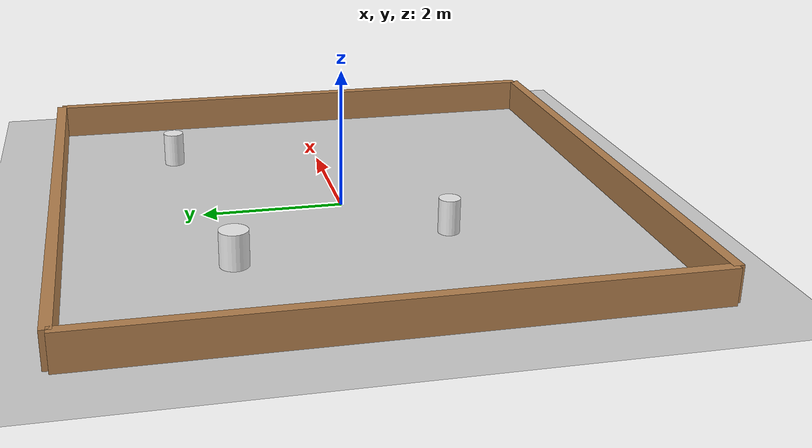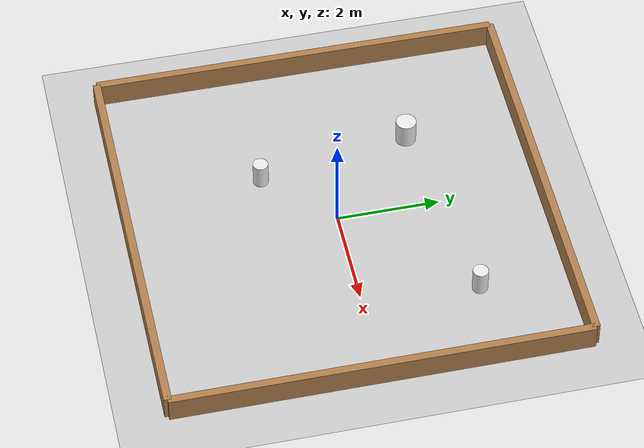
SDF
<sdf version="1.7">
 <world name="default">
  <light name="sun" type="directional">
   <pose>0 0 10 0 -0 0</pose>
   <diffuse>0.8 0.8 0.8 1</diffuse>
   <specular>0.2 0.2 0.2 1</specular>
   <attenuation>
    <range>1000</range>
    <constant>0.9</constant>
    <linear>0.01</linear>
    <quadratic>0.001</quadratic>
   </attenuation>
   <direction>-0.5 0.1 -0.9</direction>
   <spot><inner_angle>0</inner_angle><outer_angle>0</outer_angle><falloff>0</falloff></spot>
  </light>
  <model name="ground_plane">
   <static>1</static>
   <link name="link">
    <collision name="collision">
     <geometry><plane><normal>0 0 1</normal><size>100 100</size></plane></geometry>
     <surface>
      <contact><collide_bitmask>65535</collide_bitmask></contact>
      <friction><ode><mu>100</mu><mu2>50</mu2></ode></friction>
     </surface>
    </collision>
    <visual name="visual">
     <cast_shadows>0</cast_shadows>
     <geometry><plane><normal>0 0 1</normal><size>100 100</size></plane></geometry>
     <material>
      <script><uri>file://media/materials/scripts/gazebo.material</uri><name>Gazebo/Grey</name></script>
     </material>
    </visual>
   </link>
  </model>
  <physics type="ode">
   <max_step_size>0.01</max_step_size>
   <real_time_factor>1</real_time_factor>
   <real_time_update_rate>100</real_time_update_rate>
   <ode>
    <solver>
     <type>quick</type>
     <iters>150</iters>
     <precon_iters>0</precon_iters>
     <sor>1.4</sor>
     <use_dynamic_moi_rescaling>1</use_dynamic_moi_rescaling>
    </solver>
    <constraints>
     <cfm>1e-05</cfm>
     <erp>0.2</erp>
     <contact_max_correcting_vel>2000</contact_max_correcting_vel>
     <contact_surface_layer>0.01</contact_surface_layer>
    </constraints>
   </ode>
  </physics>
  <model name="obstacle">
   <pose>0 -0 -0.00088 1e-06 1e-06 0</pose>
   <link name="obstacle">
    <collision name="obstacle_1">
     <pose>-1.25 -1.25 0.25 0 -0 0</pose>
     <geometry><cylinder><radius>0.2</radius><length>0.5</length></cylinder></geometry>
    </collision>
    <visual name="obstacle_1">
     <pose>-1.25 -1.25 0.25 0 -0 0</pose>
     <geometry><cylinder><radius>0.15</radius><length>0.5</length></cylinder></geometry>
     <material>
      <script><uri>file://media/materials/scripts/gazebo.material</uri><name>Gazebo/White</name></script>
     </material>
    </visual>
    <collision name="obstacle_2">
     <pose>-1.75 1.75 0.25 0 -0 0</pose>
     <geometry><cylinder><radius>0.2</radius><length>0.5</length></cylinder></geometry>
    </collision>
    <visual name="obstacle_2">
     <pose>-1.75 1.75 0.25 0 -0 0</pose>
     <geometry><cylinder><radius>0.2</radius><length>0.5</length></cylinder></geometry>
     <material>
      <script><uri>file://media/materials/scripts/gazebo.material</uri><name>Gazebo/White</name></script>
     </material>
    </visual>
    <collision name="obstacle_3">
     <pose>2.25 2.25 0.25 0 -0 0</pose>
     <geometry><cylinder><radius>0.15</radius><length>0.5</length></cylinder></geometry>
    </collision>
    <visual name="obstacle_3">
     <pose>2.25 2.25 0.25 0 -0 0</pose>
     <geometry><cylinder><radius>0.15</radius><length>0.5</length></cylinder></geometry>
     <material>
      <script><uri>file://media/materials/scripts/gazebo.material</uri><name>Gazebo/White</name></script>
     </material>
    </visual>
    <inertial>
     <inertia><ixx>1</ixx><ixy>0</ixy><ixz>0</ixz><iyy>1</iyy><iyz>0</iyz><izz>1</izz></inertia>
     <mass>1</mass>
    </inertial>
   </link>
  </model>
  <scene><ambient>0.4 0.4 0.4 1</ambient><background>0.7 0.7 0.7 1</background><shadows>1</shadows></scene>
  <gravity>0 0 -9.8</gravity>
  <magnetic_field>6e-06 2.3e-05 -4.2e-05</magnetic_field>
  <atmosphere type="adiabatic"/>
  <spherical_coordinates>
   <surface_model>EARTH_WGS84</surface_model>
   <latitude_deg>0</latitude_deg>
   <longitude_deg>0</longitude_deg>
   <elevation>0</elevation>
   <heading_deg>0</heading_deg>
  </spherical_coordinates>
  <model name="turtlebot3_square_0">
   <link name="Wall_0">
    <collision name="Wall_0_Collision">
     <geometry><box><size>8 0.15 0.5</size></box></geometry>
     <pose>0 0 0.25 0 -0 0</pose>
    </collision>
    <visual name="Wall_0_Visual">
     <pose>0 0 0.25 0 -0 0</pose>
     <geometry><box><size>8 0.15 0.5</size></box></geometry>
     <material>
      <script><uri>file://media/materials/scripts/gazebo.material</uri><name>Gazebo/Wood</name></script>
      <ambient>1 1 1 1</ambient>
     </material>
    </visual>
    <pose>0 4 0 0 -0 0</pose>
   </link>
   <link name="Wall_2">
    <collision name="Wall_2_Collision">
     <geometry><box><size>8 0.15 0.5</size></box></geometry>
     <pose>0 0 0.25 0 -0 0</pose>
    </collision>
    <visual name="Wall_2_Visual">
     <pose>0 0 0.25 0 -0 0</pose>
     <geometry><box><size>8 0.15 0.5</size></box></geometry>
     <material>
      <script><uri>file://media/materials/scripts/gazebo.material</uri><name>Gazebo/Wood</name></script>
      <ambient>1 1 1 1</ambient>
     </material>
    </visual>
    <pose>-4 0 0 0 0 -1.5708</pose>
   </link>
   <link name="Wall_3">
    <collision name="Wall_3_Collision">
     <geometry><box><size>8 0.15 0.5</size></box></geometry>
     <pose>0 0 0.25 0 -0 0</pose>
    </collision>
    <visual name="Wall_3_Visual">
     <pose>0 0 0.25 0 -0 0</pose>
     <geometry><box><size>8 0.15 0.5</size></box></geometry>
     <material>
      <script><uri>file://media/materials/scripts/gazebo.material</uri><name>Gazebo/Wood</name></script>
      <ambient>1 1 1 1</ambient>
     </material>
    </visual>
    <pose>0 -4 0 0 -0 0</pose>
   </link>
   <link name="Wall_4">
    <collision name="Wall_4_Collision">
     <geometry><box><size>8 0.15 0.5</size></box></geometry>
     <pose>0 0 0.25 0 -0 0</pose>
    </collision>
    <visual name="Wall_4_Visual">
     <pose>0 0 0.25 0 -0 0</pose>
     <geometry><box><size>8 0.15 0.5</size></box></geometry>
     <material>
      <script><uri>file://media/materials/scripts/gazebo.material</uri><name>Gazebo/Wood</name></script>
      <ambient>1 1 1 1</ambient>
     </material>
    </visual>
    <pose>4 0 0 0 -0 1.5708</pose>
   </link>
   <static>1</static>
  </model>
 </world>
</sdf>
